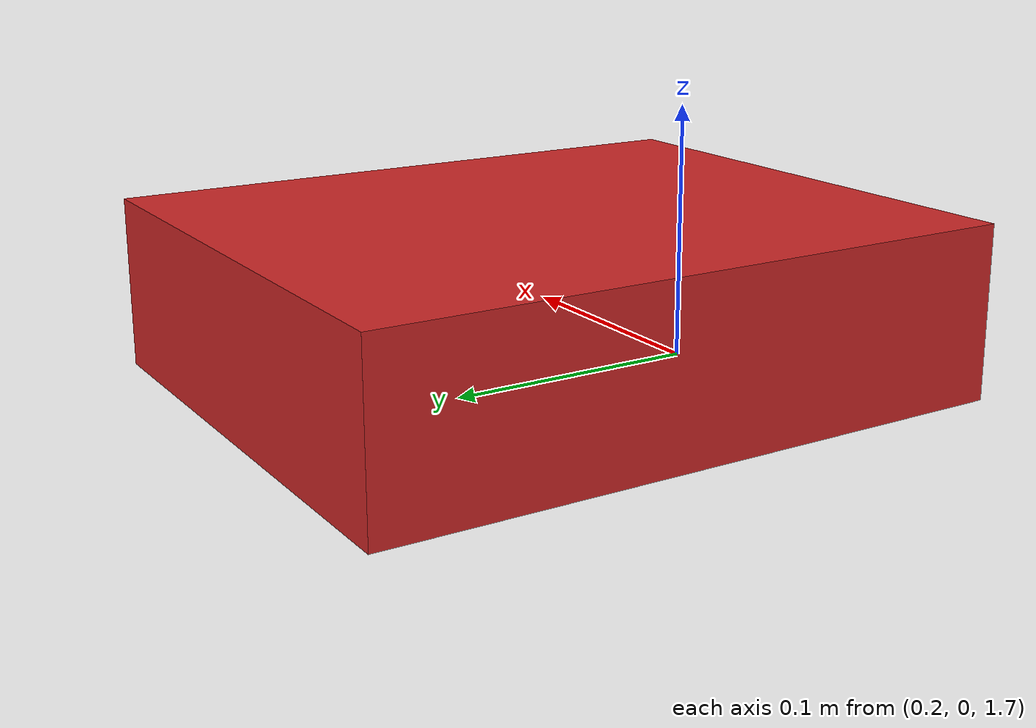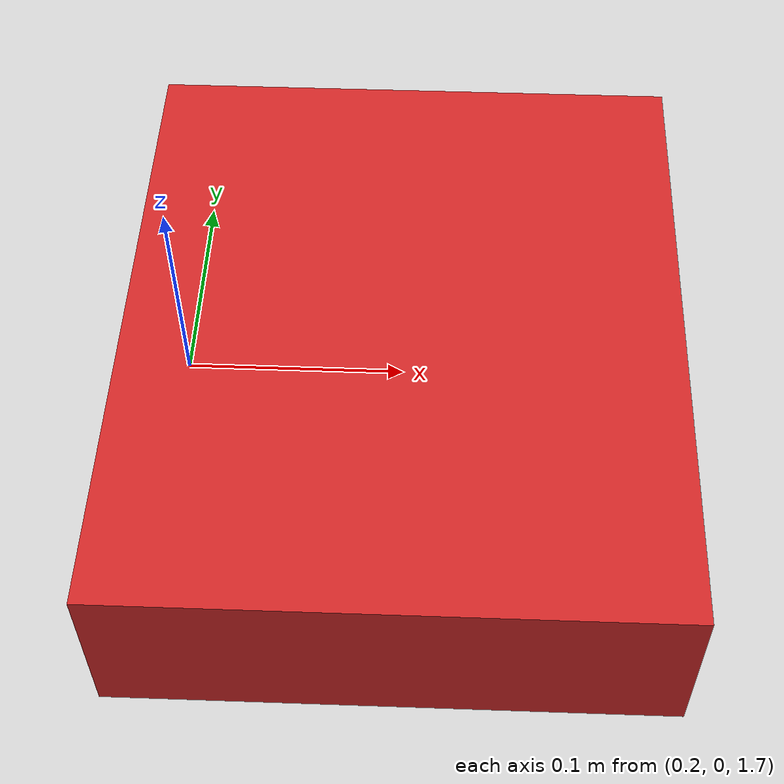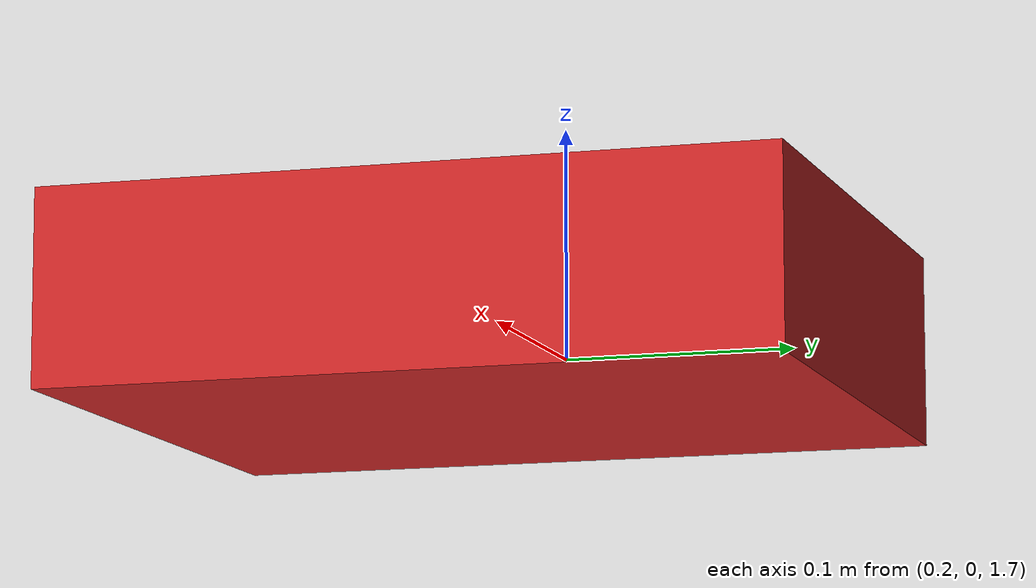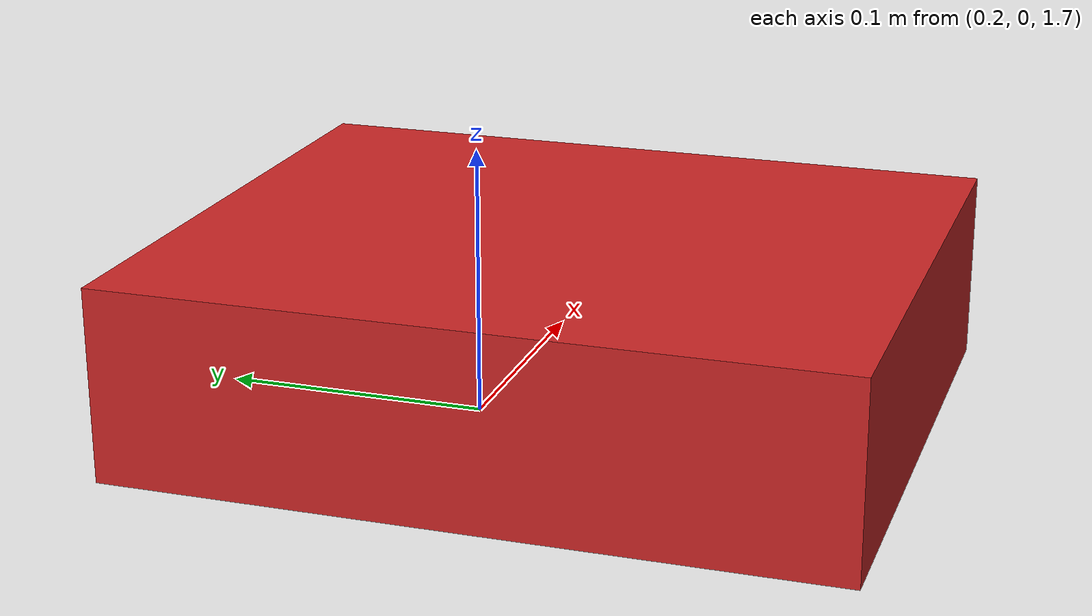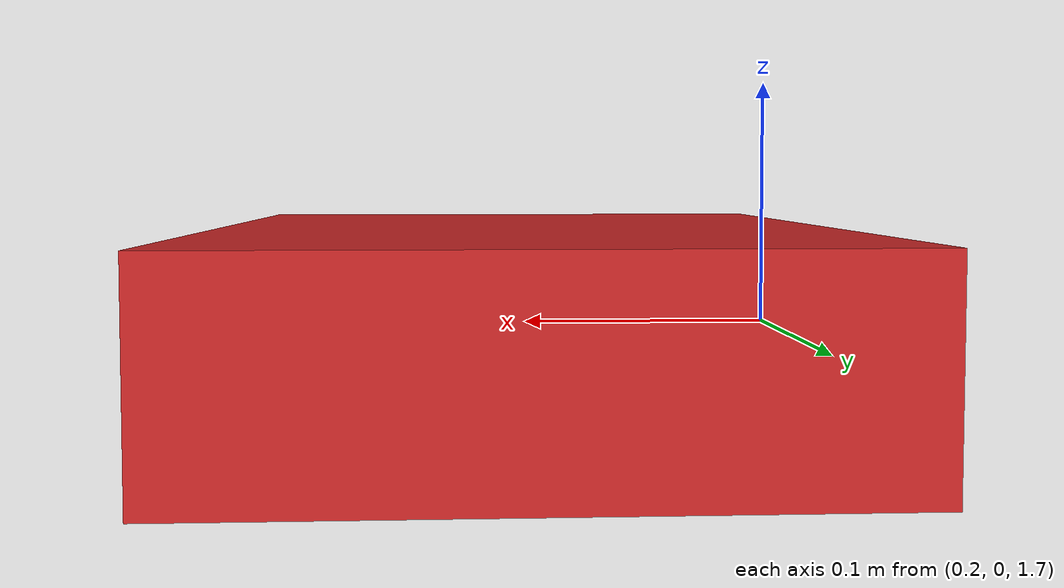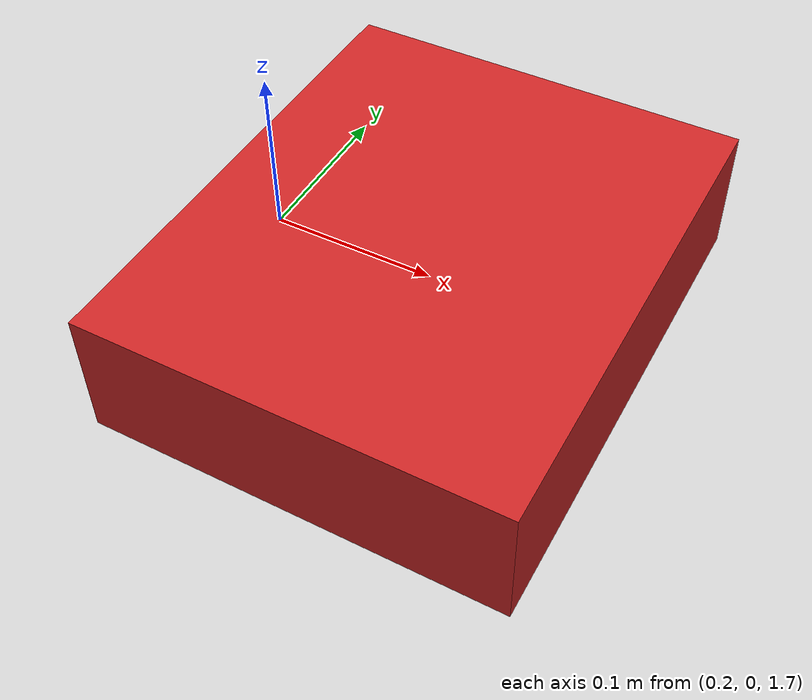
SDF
<?xml version="1.0" ?>
<sdf version="1.5">
  <model name="lifting_cube">
    <pose>0.3 0 1.7 0 0 0</pose>
    <static>false</static>
    <link name="link">
        <collision name="collision">
            <geometry>
                <box>
                    <size> 0.25 0.3 0.08 </size>
                </box>
            </geometry>
        </collision>
        <visual name="visual">
            <geometry>
                <box>
                    <size> 0.25 0.3 0.08 </size>
                </box>
            </geometry>
            <material>
                <script>
                    <uri>file://media/materials/scripts/gazebo.material</uri>
                    <name>Gazebo/Red</name>
                </script>
        </material>
        </visual>
        <inertial>
            <mass>20.0</mass>
        </inertial>
    </link>
  </model>
</sdf>
